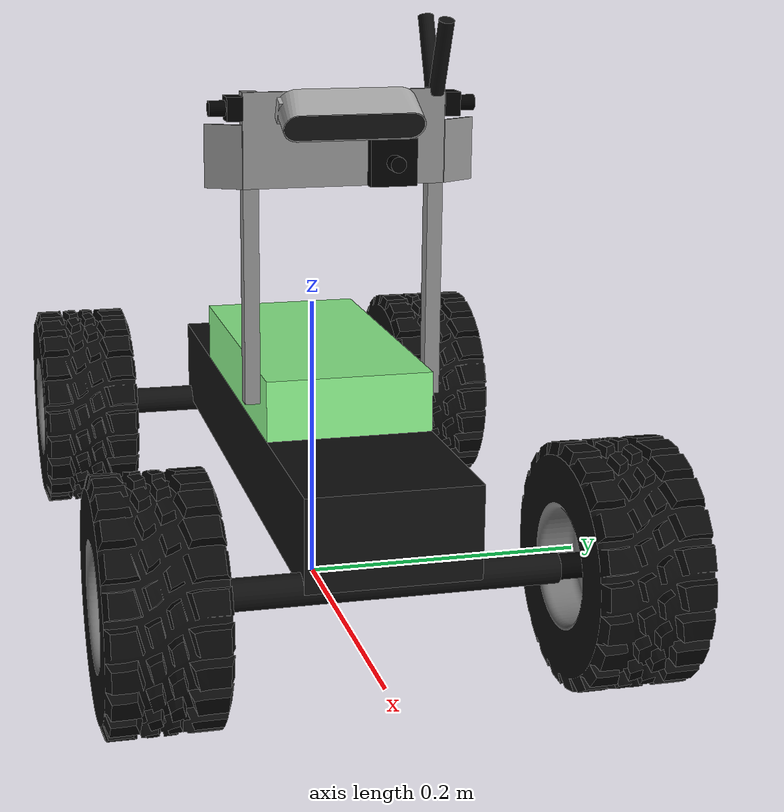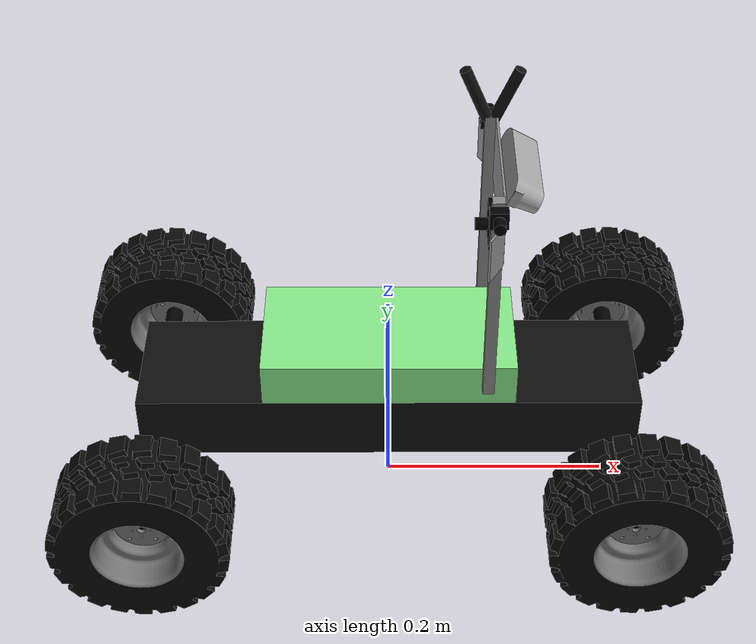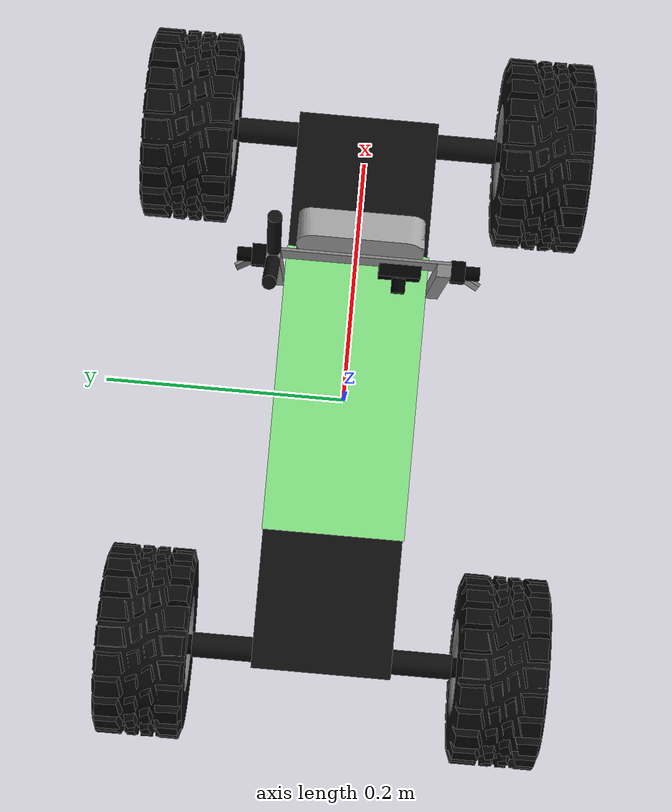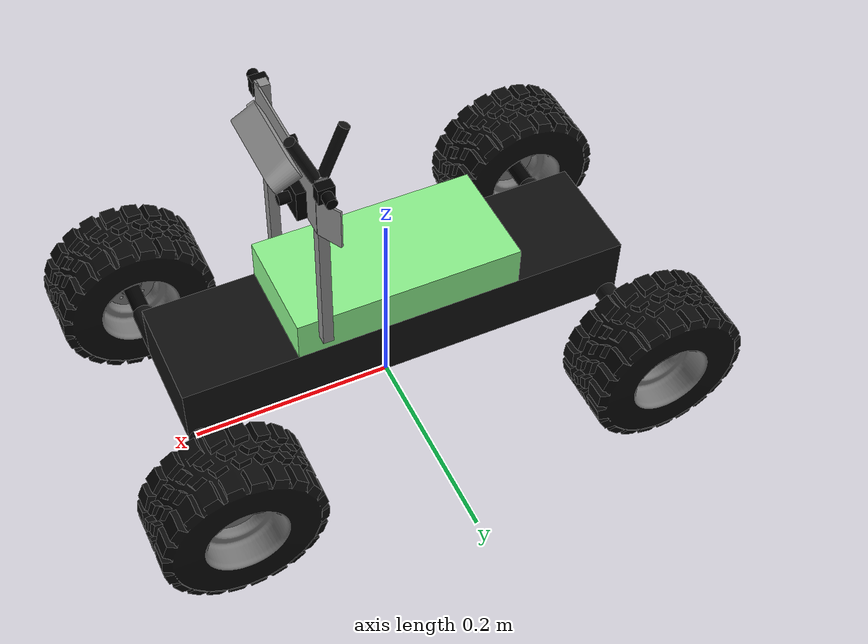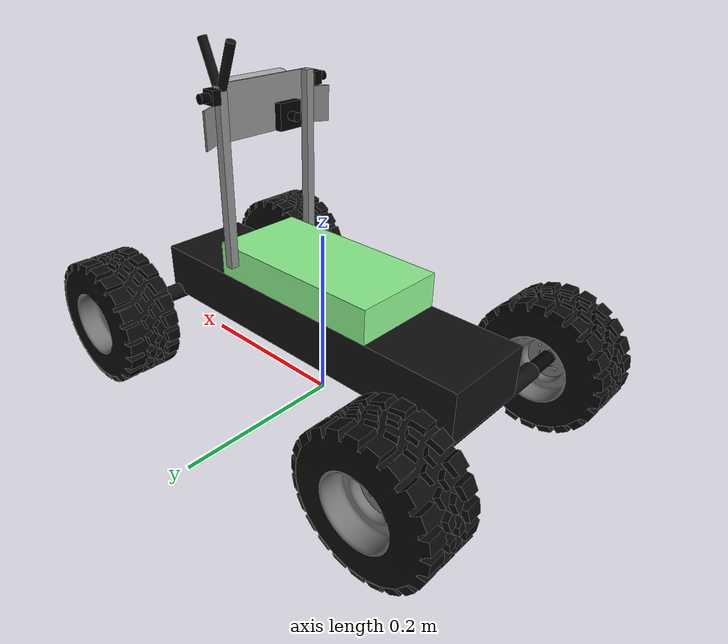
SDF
<?xml version="1.0"?>
<sdf version="1.6">
  <model name="coro_rocky_sensor_config_1">
    <enable_wind>1</enable_wind>
    <static>0</static>
    <pose>0 0 0.075 0 0 0</pose>
    <link name="base_link">
      <inertial>
        <pose>0 0 0.07 0 0 0</pose>
        <mass>3.176</mass>
	<inertia>
	  <ixx>0.0070</ixx>
	  <iyy>0.0483</iyy>
	  <izz>0.0477</izz>
	</inertia>
      </inertial>

      <collision name="chassis_collision">
        <pose>0 0 0.05 0 0 0</pose>
        <geometry>
          <box>
            <size>0.44 0.11 0.12</size>
          </box>
        </geometry>
      </collision>

      <collision name="tower_collision">
        <pose>0.085 0 0.2 0 0 0</pose>
        <geometry>
          <box>
            <size>0.04 0.24 0.25</size>
          </box>
        </geometry>
      </collision>

      <visual name="chassis_main_visual">
        <pose>0 0 0.03 0 0 0</pose>
        <geometry>
          <box>
            <size>0.44 0.11 0.06</size>
          </box>
        </geometry>
        <material>
          <ambient>0.06 0.06 0.06 1</ambient>
          <diffuse>0.06 0.06 0.06 1</diffuse>
        </material>
      </visual>
      <visual name="chassis_top_visual">
        <pose>0 0 0.08 0 0 0</pose>
        <geometry>
          <box>
            <size>0.22 0.11 0.04</size>
          </box>
        </geometry>
        <material>
          <ambient>0.55 0.95 0.55 1</ambient>
          <diffuse>0.55 0.95 0.55 1</diffuse>
        </material>
      </visual>

      <visual name="sensor_mount_1">
        <pose>0.09 0 0.25 0 0 0</pose>
        <geometry>
          <box>
            <size>0.002 0.13 0.06</size>
          </box>
        </geometry>
        <material>
          <ambient>0.55 0.55 0.55 1</ambient>
          <diffuse>0.55 0.55 0.55 1</diffuse>
        </material>
      </visual>
      <visual name="sensor_mount_2">
        <pose>0.084 -0.076 0.24 0 0 -0.5</pose>
        <geometry>
          <box>
            <size>0.002 0.025 0.04</size>
          </box>
        </geometry>
        <material>
          <ambient>0.55 0.55 0.55 1</ambient>
          <diffuse>0.55 0.55 0.55 1</diffuse>
        </material>
      </visual>
      <visual name="sensor_mount_3">
        <pose>0.084 0.076 0.24 0 0 0.5</pose>
        <geometry>
          <box>
            <size>0.002 0.025 0.04</size>
          </box>
        </geometry>
        <material>
          <ambient>0.55 0.55 0.55 1</ambient>
          <diffuse>0.55 0.55 0.55 1</diffuse>
        </material>
      </visual>
      <visual name="sensor_mount_4">
        <pose>0.085 -0.06 0.18 0 0 0</pose>
        <geometry>
          <box>
            <size>0.01 0.01 0.2</size>
          </box>
        </geometry>
        <material>
          <ambient>0.55 0.55 0.55 1</ambient>
          <diffuse>0.55 0.55 0.55 1</diffuse>
        </material>
      </visual>
      <visual name="sensor_mount_5">
        <pose>0.085 0.06 0.18 0 0 0</pose>
        <geometry>
          <box>
            <size>0.01 0.01 0.2</size>
          </box>
        </geometry>
        <material>
          <ambient>0.55 0.55 0.55 1</ambient>
          <diffuse>0.55 0.55 0.55 1</diffuse>
        </material>
      </visual>

      <visual name="antenna_visual_1">
        <pose>0.098 0.06 0.3 0 0.4 0</pose>
        <geometry>
          <cylinder>
            <length>0.05</length>
            <radius>0.005</radius>
          </cylinder>
        </geometry>
        <material>
          <ambient>0.06 0.06 0.06 1</ambient>
          <diffuse>0.06 0.06 0.06 1</diffuse>
        </material>
      </visual>
      <visual name="antenna_visual_2">
        <pose>0.072 0.06 0.3 0 -0.4 0</pose>
        <geometry>
          <cylinder>
            <length>0.05</length>
            <radius>0.005</radius>
          </cylinder>
        </geometry>
        <material>
          <ambient>0.06 0.06 0.06 1</ambient>
          <diffuse>0.06 0.06 0.06 1</diffuse>
        </material>
      </visual>

      <visual name="axle_visual_front">
        <pose>0.21 0 0 1.5707963267948966 0 0</pose>
        <geometry>
          <cylinder>
            <length>0.21</length>
            <radius>0.01</radius>
          </cylinder>
        </geometry>
        <material>
          <ambient>0.06 0.06 0.06 1</ambient>
          <diffuse>0.06 0.06 0.06 1</diffuse>
        </material>
      </visual>
      <visual name="axle_visual_rear">
        <pose>-0.21 0 0 1.5707963267948966 0 0</pose>
        <geometry>
          <cylinder>
            <length>0.21</length>
            <radius>0.01</radius>
          </cylinder>
        </geometry>
        <material>
          <ambient>0.06 0.06 0.06 1</ambient>
          <diffuse>0.06 0.06 0.06 1</diffuse>
        </material>
      </visual>

      <!-- IMU  -->
      <sensor name="imu_sensor" type="imu">
        <always_on>1</always_on>
        <update_rate>50</update_rate>
        <imu>
          <enable_orientation>0</enable_orientation>
          <angular_velocity>
            <x>
              <noise type="gaussian">
                <mean>0</mean>
                <stddev>0.009</stddev>
                <bias_mean>0.00075</bias_mean>
                <bias_stddev>0.005</bias_stddev>
                <dynamic_bias_stddev>0.00002</dynamic_bias_stddev>
                <dynamic_bias_correlation_time>400.0</dynamic_bias_correlation_time>
                <precision>0.00025</precision>
              </noise>
            </x>
            <y>
              <noise type="gaussian">
                <mean>0</mean>
                <stddev>0.009</stddev>
                <bias_mean>0.00075</bias_mean>
                <bias_stddev>0.005</bias_stddev>
                <dynamic_bias_stddev>0.00002</dynamic_bias_stddev>
                <dynamic_bias_correlation_time>400.0</dynamic_bias_correlation_time>
                <precision>0.00025</precision>
              </noise>
            </y>
            <z>
              <noise type="gaussian">
                <mean>0</mean>
                <stddev>0.009</stddev>
                <bias_mean>0.00075</bias_mean>
                <bias_stddev>0.005</bias_stddev>
                <dynamic_bias_stddev>0.00002</dynamic_bias_stddev>
                <dynamic_bias_correlation_time>400.0</dynamic_bias_correlation_time>
                <precision>0.00025</precision>
              </noise>
            </z>
          </angular_velocity>
          <linear_acceleration>
            <x>
              <noise type="gaussian">
                <mean>0</mean>
                <stddev>0.021</stddev>
                <bias_mean>0.05</bias_mean>
                <bias_stddev>0.0075</bias_stddev>
                <dynamic_bias_stddev>0.000375</dynamic_bias_stddev>
                <dynamic_bias_correlation_time>175.0</dynamic_bias_correlation_time>
                <precision>0.005</precision>
              </noise>
            </x>
            <y>
              <noise type="gaussian">
                <mean>0</mean>
                <stddev>0.021</stddev>
                <bias_mean>0.05</bias_mean>
                <bias_stddev>0.0075</bias_stddev>
                <dynamic_bias_stddev>0.000375</dynamic_bias_stddev>
                <dynamic_bias_correlation_time>175.0</dynamic_bias_correlation_time>
                <precision>0.005</precision>
              </noise>
            </y>
            <z>
              <noise type="gaussian">
                <mean>0</mean>
                <stddev>0.021</stddev>
                <bias_mean>0.05</bias_mean>
                <bias_stddev>0.0075</bias_stddev>
                <dynamic_bias_stddev>0.000375</dynamic_bias_stddev>
                <dynamic_bias_correlation_time>175.0</dynamic_bias_correlation_time>
                <precision>0.005</precision>
              </noise>
            </z>
          </linear_acceleration>
        </imu>
      </sensor>

      <sensor name="air_pressure" type="air_pressure">
        <always_on>1</always_on>
        <update_rate>20</update_rate>
        <air_pressure>
          <reference_altitude>0</reference_altitude>
          <noise type="gaussian">
            <mean>0.00000008</mean>
          </noise>
        </air_pressure>
      </sensor>

      <visual name="d435_realsense_camera_visual">
        <pose>0.09 0 0.26 0 0.46 0</pose>
        <geometry>
          <mesh>
            <scale>0.001 0.001 0.001</scale>
            <uri>meshes/realsense_d435.dae</uri>
          </mesh>
        </geometry>
      </visual>

      <!-- Based on Intel realsense D435 (intrinsics and distortion not modeled)-->
      <sensor name="rs_front" type="rgbd_camera">
        <pose>0.122 0 0.257 0 0.46 0</pose>
        <always_on>1</always_on>
        <update_rate>30</update_rate>
        <camera name="rs_front">
          <horizontal_fov>1.50098</horizontal_fov>
          <lens>
            <intrinsics>
              <!-- fx = fy = width / ( 2 * tan (hfov / 2 ) ) -->
              <fx>343.159</fx>
              <fy>343.159</fy>
              <!-- cx = ( width - 1 ) / 2 -->
              <cx>319.5</cx>
              <!-- cy = ( height - 1 ) / 2 -->
              <cy>179.5</cy>
              <s>0</s>
            </intrinsics>
          </lens>
          <distortion>
            <k1>0.0</k1>
            <k2>0.0</k2>
            <k3>0.0</k3>
            <p1>0.0</p1>
            <p2>0.0</p2>
            <center>0.5 0.5</center>
          </distortion>
          <image>
            <width>640</width>
            <height>360</height>
            <format>R8G8B8</format>
          </image>
          <clip>
            <near>0.01</near>
            <far>300</far>
          </clip>
          <depth_camera>
            <clip>
              <near>0.1</near>
              <far>10</far>
            </clip>
          </depth_camera>
          <noise>
            <type>gaussian</type>
            <mean>0</mean>
            <stddev>0.007</stddev>
          </noise>
        </camera>
      </sensor>

      <visual name="camera_front_visual">
        <pose>0.095 0.03 0.235 0 0 0</pose>
        <geometry>
          <box>
            <size>0.01 0.03 0.03</size>
          </box>
        </geometry>
        <material>
          <ambient>0.0 0.0 0.0 1.0</ambient>
          <diffuse>0.0 0.0 0.0 1.0</diffuse>
        </material>
      </visual>
      <visual name="camera_lens_front_visual">
        <pose>0.105 0.03 0.235 0 1.5707963267948966 0</pose>
        <geometry>
          <cylinder>
            <length>0.011</length>
            <radius>0.005</radius>
          </cylinder>
        </geometry>
        <material>
          <ambient>0.0 0.0 0.0 1.0</ambient>
          <diffuse>0.0 0.0 0.0 1.0</diffuse>
        </material>
      </visual>

      <visual name="camera_rear_visual">
        <pose>0.085 -0.03 0.235 0 0 0</pose>
        <geometry>
          <box>
            <size>0.01 0.03 0.03</size>
          </box>
        </geometry>
        <material>
          <ambient>0.0 0.0 0.0 1.0</ambient>
          <diffuse>0.0 0.0 0.0 1.0</diffuse>
        </material>
      </visual>
      <visual name="camera_lens_rear_visual">
        <pose>0.075 -0.03 0.235 0 1.5707963267948966 0</pose>
        <geometry>
          <cylinder>
            <length>0.011</length>
            <radius>0.005</radius>
          </cylinder>
        </geometry>
        <material>
          <ambient>0.0 0.0 0.0 1.0</ambient>
          <diffuse>0.0 0.0 0.0 1.0</diffuse>
        </material>
      </visual>
      <visual name="camera_left_visual">
        <pose>0.085 0.07 0.27 0 0 0</pose>
        <geometry>
          <box>
            <size>0.015 0.01 0.015</size>
          </box>
        </geometry>
        <material>
          <ambient>0.0 0.0 0.0 1.0</ambient>
          <diffuse>0.0 0.0 0.0 1.0</diffuse>
        </material>
      </visual>
      <visual name="camera_lens_left_visual">
        <pose>0.085 0.08 0.27 1.5707963267948966 0 0</pose>
        <geometry>
          <cylinder>
            <length>0.011</length>
            <radius>0.005</radius>
          </cylinder>
        </geometry>
        <material>
          <ambient>0.0 0.0 0.0 1.0</ambient>
          <diffuse>0.0 0.0 0.0 1.0</diffuse>
        </material>
      </visual>
      <visual name="camera_right_visual">
        <pose>0.085 -0.07 0.27 0 0 0</pose>
        <geometry>
          <box>
            <size>0.015 0.01 0.015</size>
          </box>
        </geometry>
        <material>
          <ambient>0.0 0.0 0.0 1.0</ambient>
          <diffuse>0.0 0.0 0.0 1.0</diffuse>
        </material>
      </visual>
      <visual name="camera_lens_right_visual">
        <pose>0.085 -0.08 0.27 1.5707963267948966 0 0</pose>
        <geometry>
          <cylinder>
            <length>0.011</length>
            <radius>0.005</radius>
          </cylinder>
        </geometry>
        <material>
          <ambient>0.0 0.0 0.0 1.0</ambient>
          <diffuse>0.0 0.0 0.0 1.0</diffuse>
        </material>
      </visual>

      <!-- Real robot has 2 x B0247 with LN008 each with a 180 deg hor x 130 deg vert FOV
           Since fisheye cameras are not modeled, four cameras are used in the model -->
       <sensor name="camera_front" type="camera">
        <pose>0.111 0.03 0.235 0 0 0</pose>
        <always_on>1</always_on>
        <update_rate>25</update_rate>
        <camera name="camera_front">
          <horizontal_fov>1.658</horizontal_fov>
          <lens>
            <intrinsics>
              <!-- fx = fy = width / ( 2 * tan (hfov / 2 ) ) -->
              <fx>329.9</fx>
              <fy>329.9</fy>
              <!-- cx = ( width - 1 ) / 2 -->
              <cx>359.5</cx>
              <!-- cy = ( height - 1 ) / 2 -->
              <cy>539.5</cy>
              <s>0</s>
            </intrinsics>
          </lens>
          <distortion>
            <k1>0.0</k1>
            <k2>0.0</k2>
            <k3>0.0</k3>
            <p1>0.0</p1>
            <p2>0.0</p2>
            <center>0.5 0.5</center>
          </distortion>
          <image>
            <width>720</width>
            <height>1080</height>
            <format>R8G8B8</format>
          </image>
          <clip>
            <near>0.01</near>
            <far>300</far>
          </clip>
          <noise>
            <type>gaussian</type>
            <mean>0</mean>
            <stddev>0.007</stddev>
          </noise>
        </camera>
      </sensor>

      <sensor name="camera_rear" type="camera">
        <pose>0.069 -0.03 0.235 0 0 3.141592653589793</pose>
        <always_on>1</always_on>
        <update_rate>25</update_rate>
        <camera name="camera_rear">
          <horizontal_fov>1.658</horizontal_fov>
          <lens>
            <intrinsics>
              <!-- fx = fy = width / ( 2 * tan (hfov / 2 ) ) -->
              <fx>329.9</fx>
              <fy>329.9</fy>
              <!-- cx = ( width - 1 ) / 2 -->
              <cx>359.5</cx>
              <!-- cy = ( height - 1 ) / 2 -->
              <cy>539.5</cy>
              <s>0</s>
            </intrinsics>
          </lens>
          <distortion>
            <k1>0.0</k1>
            <k2>0.0</k2>
            <k3>0.0</k3>
            <p1>0.0</p1>
            <p2>0.0</p2>
            <center>0.5 0.5</center>
          </distortion>
          <image>
            <width>720</width>
            <height>1080</height>
            <format>R8G8B8</format>
          </image>
          <clip>
            <near>0.01</near>
            <far>300</far>
          </clip>
          <noise>
            <type>gaussian</type>
            <mean>0</mean>
            <stddev>0.007</stddev>
          </noise>
        </camera>
      </sensor>

      <sensor name="camera_left" type="camera">
        <pose>0.085 0.09 0.27 0 0 1.5707963267948966</pose>
        <always_on>1</always_on>
        <update_rate>25</update_rate>
        <camera name="camera_left">
          <horizontal_fov>1.658</horizontal_fov>
          <lens>
            <intrinsics>
              <!-- fx = fy = width / ( 2 * tan (hfov / 2 ) ) -->
              <fx>329.9</fx>
              <fy>329.9</fy>
              <!-- cx = ( width - 1 ) / 2 -->
              <cx>359.5</cx>
              <!-- cy = ( height - 1 ) / 2 -->
              <cy>539.5</cy>
              <s>0</s>
            </intrinsics>
          </lens>
          <distortion>
            <k1>0.0</k1>
            <k2>0.0</k2>
            <k3>0.0</k3>
            <p1>0.0</p1>
            <p2>0.0</p2>
            <center>0.5 0.5</center>
          </distortion>
          <image>
            <width>720</width>
            <height>1080</height>
            <format>R8G8B8</format>
          </image>
          <clip>
            <near>0.01</near>
            <far>300</far>
          </clip>
          <noise>
            <type>gaussian</type>
            <mean>0</mean>
            <stddev>0.007</stddev>
          </noise>
        </camera>
      </sensor>

      <sensor name="camera_right" type="camera">
        <pose>0.085 -0.09 0.27 0 0 -1.5707963267948966</pose>
        <always_on>1</always_on>
        <update_rate>25</update_rate>
        <camera name="camera_right">
          <horizontal_fov>1.658</horizontal_fov>
          <lens>
            <intrinsics>
              <!-- fx = fy = width / ( 2 * tan (hfov / 2 ) ) -->
              <fx>329.9</fx>
              <fy>329.9</fy>
              <!-- cx = ( width - 1 ) / 2 -->
              <cx>359.5</cx>
              <!-- cy = ( height - 1 ) / 2 -->
              <cy>539.5</cy>
              <s>0</s>
            </intrinsics>
          </lens>
          <distortion>
            <k1>0.0</k1>
            <k2>0.0</k2>
            <k3>0.0</k3>
            <p1>0.0</p1>
            <p2>0.0</p2>
            <center>0.5 0.5</center>
          </distortion>
          <image>
            <width>720</width>
            <height>1080</height>
            <format>R8G8B8</format>
          </image>
          <clip>
            <near>0.01</near>
            <far>300</far>
          </clip>
          <noise>
            <type>gaussian</type>
            <mean>0</mean>
            <stddev>0.007</stddev>
          </noise>
        </camera>
      </sensor>

      <light name="light_front_left" type="spot">
        <pose>0.11 0.08 0.235 1.5 0 0</pose>
        <attenuation>
          <range>25</range>
          <linear>0</linear>
          <constant>0.1</constant>
          <quadratic>0.005</quadratic>
        </attenuation>
        <diffuse>0.8 0.8 0.5 1</diffuse>
        <specular>0.8 0.8 0.5 1</specular>
        <spot>
          <inner_angle>1.571</inner_angle>
          <outer_angle>2.1</outer_angle>
          <falloff>1</falloff>
        </spot>
        <direction>1 0 0</direction>
        <cast_shadows>1</cast_shadows>
      </light>
      <light name="light_front_right" type="spot">
        <pose>0.11 -0.08 0.235 1.5 0 3.14</pose>
        <attenuation>
          <range>25</range>
          <linear>0</linear>
          <constant>0.1</constant>
          <quadratic>0.005</quadratic>
        </attenuation>
        <diffuse>0.8 0.8 0.5 1</diffuse>
        <specular>0.8 0.8 0.5 1</specular>
        <spot>
          <inner_angle>1.571</inner_angle>
          <outer_angle>2.1</outer_angle>
          <falloff>1</falloff>
        </spot>
        <direction>-1 0 0</direction>
        <cast_shadows>1</cast_shadows>
      </light>
      <light name="light_rear" type="spot">
        <pose>0.07 0.03 0.235 1.5 0 1.5</pose>
        <attenuation>
          <range>25</range>
          <linear>0</linear>
          <constant>0.1</constant>
          <quadratic>0.005</quadratic>
        </attenuation>
        <diffuse>0.8 0.8 0.5 1</diffuse>
        <specular>0.8 0.8 0.5 1</specular>
        <spot>
          <inner_angle>2.2</inner_angle>
          <outer_angle>2.8</outer_angle>
          <falloff>1</falloff>
        </spot>
        <direction>0 1 0</direction>
        <cast_shadows>1</cast_shadows>
      </light>
      <light name="light_front_center" type="spot">
        <pose>0.11 -0.03 0.235 1.5 0 -1.5</pose>
        <attenuation>
          <range>25</range>
          <linear>0</linear>
          <constant>0.1</constant>
          <quadratic>0.005</quadratic>
        </attenuation>
        <diffuse>0.8 0.8 0.5 1</diffuse>
        <specular>0.8 0.8 0.5 1</specular>
        <spot>
          <inner_angle>1.571</inner_angle>
          <outer_angle>2.1</outer_angle>
          <falloff>1</falloff>
        </spot>
        <direction>0 -1 0</direction>
        <cast_shadows>1</cast_shadows>
      </light>

    </link>

    <link name="front_left_wheel_steering_link">
      <pose>0.21 0.11 0 0 0 0</pose>
      <inertial>
        <mass>0.05</mass>
        <inertia>
          <ixx>0.000153</ixx>
          <iyy>0.00025</iyy>
          <izz>0.000153</izz>
        </inertia>
      </inertial>
      <visual name="steering_link_visual">
        <pose>0 0 0 0 0 0</pose>
        <geometry>
          <cylinder>
            <length>0.01</length>
            <radius>0.003</radius>
          </cylinder>
        </geometry>
        <material>
          <ambient>0.04 0.04 0.04 1</ambient>
          <diffuse>0.04 0.04 0.04 1</diffuse>
        </material>
      </visual>
    </link>

    <link name="front_right_wheel_steering_link">
      <pose>0.21 -0.11 0 0 0 0</pose>
      <inertial>
        <mass>0.05</mass>
        <inertia>
          <ixx>0.000153</ixx>
          <iyy>0.00025</iyy>
          <izz>0.000153</izz>
        </inertia>
      </inertial>
      <visual name="steering_link_visual">
        <pose>0 0 0 0 0 0</pose>
        <geometry>
          <cylinder>
            <length>0.01</length>
            <radius>0.003</radius>
          </cylinder>
        </geometry>
        <material>
          <ambient>0.04 0.04 0.04 1</ambient>
          <diffuse>0.04 0.04 0.04 1</diffuse>
        </material>
      </visual>
    </link>

    <link name="front_left_wheel">
      <pose>0.21 0.1425 0 0 0 0</pose>
      <!-- Inertia and size need adjusted -->
      <inertial>
        <mass>0.2</mass>
        <inertia>
          <ixx>0.000358</ixx>
          <iyy>0.0005625</iyy>
          <izz>0.000358</izz>
        </inertia>
      </inertial>
      <collision name="collision">
        <pose>0 0 0 -1.5707963267948966 0 0</pose>
        <geometry>
          <cylinder>
            <length>0.068</length>
            <radius>0.075</radius>
          </cylinder>
        </geometry>
        <surface>
          <friction>
            <ode>
              <mu>1</mu>
              <mu2>1</mu2>
              <fdir1>0 0 1</fdir1>
            </ode>
          </friction>
        </surface>
      </collision>
      <visual name="tire_visual">
        <pose>0 0 0 0 0 0</pose>
        <geometry>
          <mesh>
            <uri>meshes/wheel.dae</uri>
	    <scale>0.433 0.618 0.433</scale>
          </mesh>
        </geometry>
      </visual>
      <visual name="axis_visual">
        <pose>0 -0.02 0 1.5707963267948966 0 0</pose>
        <geometry>
          <cylinder>
            <length>0.04</length>
            <radius>0.008</radius>
          </cylinder>
        </geometry>
        <material>
          <ambient>0 0 0 1</ambient>
          <diffuse>0 0 0 1</diffuse>
        </material>
      </visual>
    </link>

    <link name="front_right_wheel">
      <pose>0.21 -0.1425 0 0 0 0</pose>
      <inertial>
        <mass>0.2</mass>
        <inertia>
          <ixx>0.000358</ixx>
          <iyy>0.0005625</iyy>
          <izz>0.000358</izz>
        </inertia>
      </inertial>
      <collision name="collision">
        <pose>0 0 0 1.5707963267948966 0 0</pose>
        <geometry>
          <cylinder>
            <length>0.068</length>
            <radius>0.075</radius>
          </cylinder>
        </geometry>
        <surface>
          <friction>
            <ode>
              <mu>1</mu>
              <mu2>1</mu2>
              <fdir1>0 0 1</fdir1>
            </ode>
          </friction>
        </surface>
      </collision>
      <visual name="tire_visual">
        <pose>0 0 0 0 0 0</pose>
        <geometry>
          <mesh>
            <uri>meshes/wheel.dae</uri>
	    <scale>0.433 0.618 0.433</scale>
          </mesh>
        </geometry>
      </visual>
      <visual name="axis_visual">
        <pose>0 0.02 0 1.5707963267948966 0 0</pose>
        <geometry>
          <cylinder>
            <length>0.04</length>
            <radius>0.008</radius>
          </cylinder>
        </geometry>
        <material>
          <ambient>0 0 0 1</ambient>
          <diffuse>0 0 0 1</diffuse>
        </material>
      </visual>
    </link>

    <link name="rear_left_wheel">
      <pose>-0.21 0.1425 0 0 0 0</pose>
      <inertial>
        <mass>0.2</mass>
        <inertia>
          <ixx>0.000358</ixx>
          <iyy>0.0005625</iyy>
          <izz>0.000358</izz>
        </inertia>
      </inertial>
      <collision name="collision">
        <pose>0 0 0 -1.5707963267948966 0 0</pose>
        <geometry>
          <cylinder>
            <length>0.068</length>
            <radius>0.075</radius>
          </cylinder>
        </geometry>
        <surface>
          <friction>
            <ode>
              <mu>1</mu>
              <mu2>1</mu2>
              <fdir1>0 0 1</fdir1>
            </ode>
          </friction>
        </surface>
      </collision>
      <visual name="tire_visual">
        <pose>0 0 0 0 0 0</pose>
        <geometry>
          <mesh>
            <uri>meshes/wheel.dae</uri>
	    <scale>0.433 0.618 0.433</scale>
          </mesh>
        </geometry>
      </visual>
      <visual name="axis_visual">
        <pose>0 -0.02 0 1.5707963267948966 0 0</pose>
        <geometry>
          <cylinder>
            <length>0.04</length>
            <radius>0.008</radius>
          </cylinder>
        </geometry>
        <material>
          <ambient>0 0 0 1</ambient>
          <diffuse>0 0 0 1</diffuse>
        </material>
      </visual>
    </link>

    <link name="rear_right_wheel">
      <pose>-0.21 -0.1425 0 0 0 0</pose>
      <inertial>
        <mass>0.2</mass>
        <inertia>
          <ixx>0.000358</ixx>
          <iyy>0.0005625</iyy>
          <izz>0.000358</izz>
        </inertia>
      </inertial>
      <collision name="collision">
        <pose>0 0 0 1.5707963267948966 0 0</pose>
        <geometry>
          <cylinder>
            <length>0.068</length>
            <radius>0.075</radius>
          </cylinder>
        </geometry>
        <surface>
          <friction>
            <ode>
              <mu>1</mu>
              <mu2>1</mu2>
              <fdir1>0 0 1</fdir1>
            </ode>
          </friction>
        </surface>
      </collision>
      <visual name="tire_visual">
        <pose>0 0 0 0 0 0</pose>
        <geometry>
          <mesh>
            <uri>meshes/wheel.dae</uri>
	    <scale>0.433 0.618 0.433</scale>
          </mesh>
        </geometry>
      </visual>
      <visual name="axis_visual">
        <pose>0 0.02 0 1.5707963267948966 0 0</pose>
        <geometry>
          <cylinder>
            <length>0.04</length>
            <radius>0.008</radius>
          </cylinder>
        </geometry>
        <material>
          <ambient>0 0 0 1</ambient>
          <diffuse>0 0 0 1</diffuse>
        </material>
      </visual>
    </link>

    <joint name="front_left_wheel_steering_joint" type="revolute">
      <child>front_left_wheel_steering_link</child>
      <parent>base_link</parent>
      <axis>
        <xyz>0 0 1</xyz>
        <limit>
          <lower>-0.6</lower>
          <upper>+0.6</upper>
          <velocity>6.0</velocity>
          <effort>3</effort>
        </limit>
        <use_parent_model_frame>1</use_parent_model_frame>
      </axis>
    </joint>

    <joint name="front_right_wheel_steering_joint" type="revolute">
      <parent>base_link</parent>
      <child>front_right_wheel_steering_link</child>
      <axis>
        <xyz>0 0 1</xyz>
        <limit>
          <lower>-0.6</lower>
          <upper>+0.6</upper>
          <velocity>6.0</velocity>
          <effort>3</effort>
        </limit>
      </axis>
    </joint>

    <joint name="front_left_wheel_joint" type="revolute">
      <child>front_left_wheel</child>
      <parent>front_left_wheel_steering_link</parent>
      <axis>
        <xyz>0 1 0</xyz>
        <limit>
          <lower>-1.79769e+308</lower>
          <upper>+1.79769e+308</upper>
          <velocity>40</velocity>
          <effort>9</effort>
        </limit>
        <use_parent_model_frame>1</use_parent_model_frame>
      </axis>
    </joint>

    <joint name="front_right_wheel_joint" type="revolute">
      <parent>front_right_wheel_steering_link</parent>
      <child>front_right_wheel</child>
      <axis>
        <xyz>0 1 0</xyz>
        <limit>
          <lower>-1.79769e+308</lower>
          <upper>+1.79769e+308</upper>
          <velocity>40</velocity>
          <effort>9</effort>
        </limit>
      </axis>
    </joint>

    <joint name="rear_left_wheel_joint" type="revolute">
      <parent>base_link</parent>
      <child>rear_left_wheel</child>
      <axis>
        <xyz>0 1 0</xyz>
        <limit>
          <lower>-1.79769e+308</lower>
          <upper>+1.79769e+308</upper>
          <velocity>40</velocity>
          <effort>9</effort>
        </limit>
      </axis>
    </joint>

    <joint name="rear_right_wheel_joint" type="revolute">
      <parent>base_link</parent>
      <child>rear_right_wheel</child>
      <axis>
        <xyz>0 1 0</xyz>
        <limit>
          <lower>-1.79769e+308</lower>
          <upper>+1.79769e+308</upper>
          <velocity>40</velocity>
          <effort>9</effort>
        </limit>
      </axis>
    </joint>

  </model>
</sdf>
